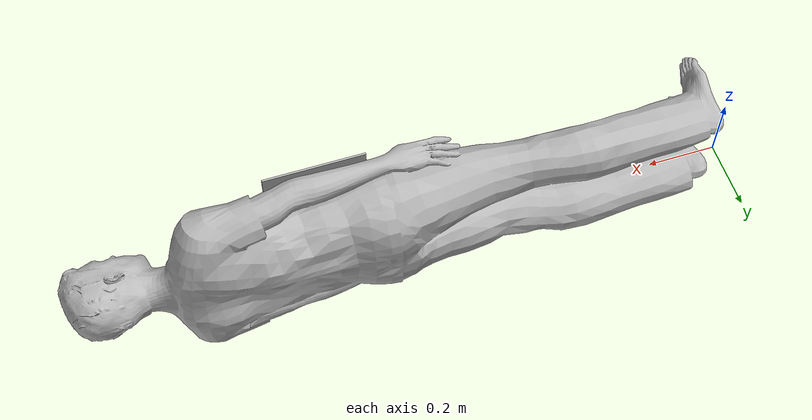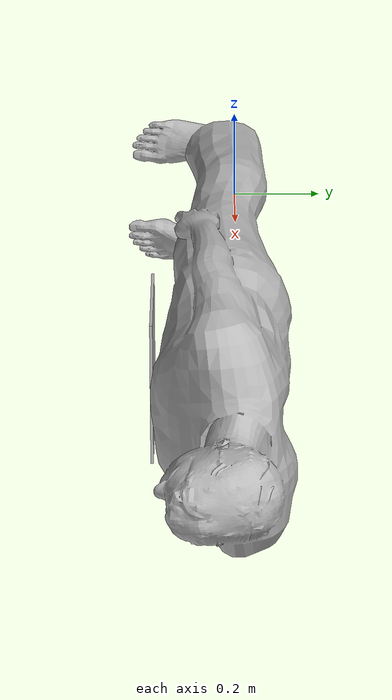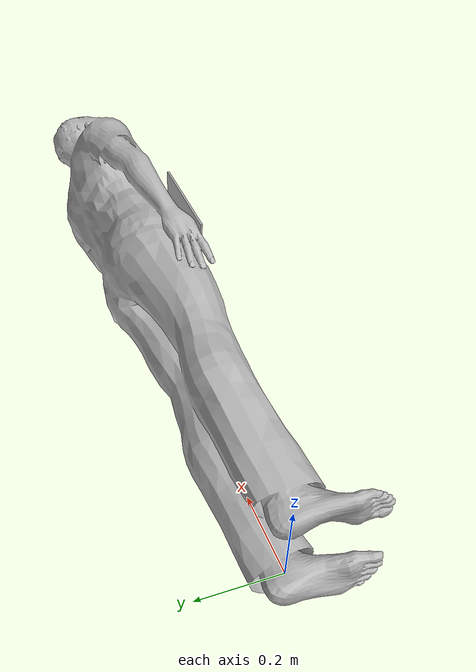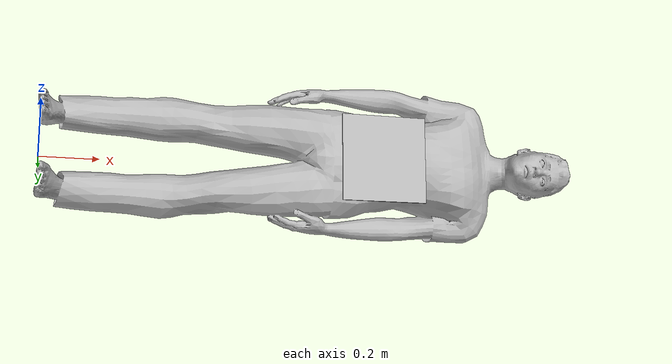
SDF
<?xml version="1.0" ?>
<sdf version="1.5">
  <model name="person6">
    <static>true</static>

    <link name="marker_link">
      <visual name="visual">
	<pose>1.15 -0.18 -0.13 0 0 1.57</pose>
        <geometry>
          <mesh>
            <uri>model://target6/meshes/target6.dae</uri>
          <scale>0.6 0.6 0.6</scale></mesh>
        </geometry>
      </visual>
    </link>

    <link name="link">
      <inertial>
        <pose>0 -0.1 0.95 0 0 0</pose>
        <mass>80.0</mass>
        <inertia>
          <ixx>24.88</ixx>
          <ixy>0</ixy>
          <ixz>0</ixz>
          <iyy>25.73</iyy>
          <iyz>0</iyz>
          <izz>2.48</izz>
        </inertia>
      </inertial>

      <collision name="bottom">
        <pose>0 -0.1 0.01 0 0 0</pose>
        <geometry>
          <box>
            <size>0.5 0.35 0.02</size>
          </box>
        </geometry>
      </collision>

      <collision name="person">
        <pose>0 0 0.02 0 1.57 0</pose>
        <geometry>
          <mesh>
            <uri>model://person_standing/meshes/standing.dae</uri>
          </mesh>
        </geometry>
      </collision>

      <visual name="visual">
        <pose>0 0 0.02 0 1.57 0</pose>
        <geometry>
          <mesh>
            <uri>model://person_standing/meshes/standing.dae</uri>
          </mesh>
        </geometry>
      </visual>
    </link>
  </model>
</sdf>
